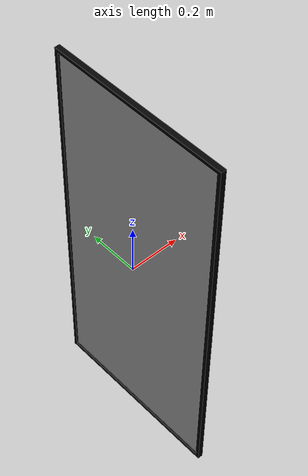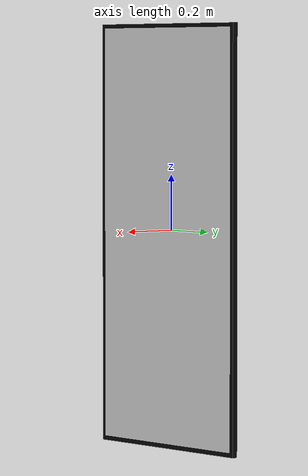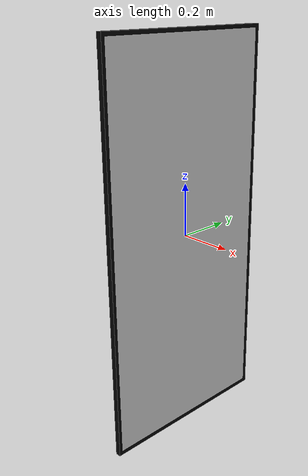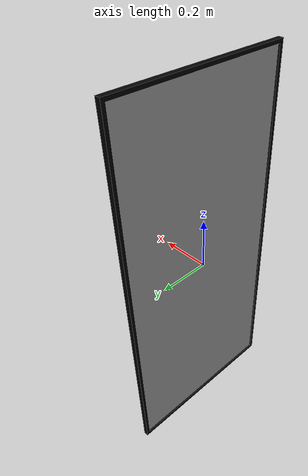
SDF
<?xml version="1.0" ?>
<sdf version="1.5">
  <model name='lightbulb_poster'>
    <pose>0 0 0 0 0 0</pose>
    <static>1</static>
    <link name='body'>
      <visual name='lightbulb_poster'>
        <cast_shadows>1</cast_shadows>
        <geometry>
          <mesh>
            <uri>model://lightbulb_poster/meshes/viz_poster.dae</uri>
          </mesh>
        </geometry>
      </visual>
    </link>
  </model>
</sdf>
